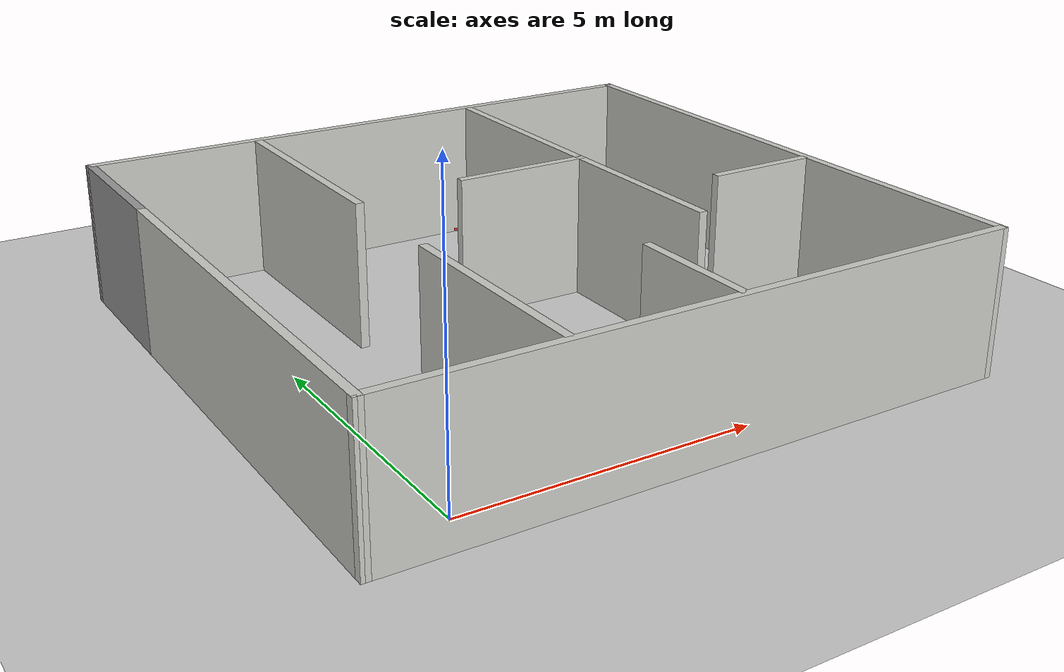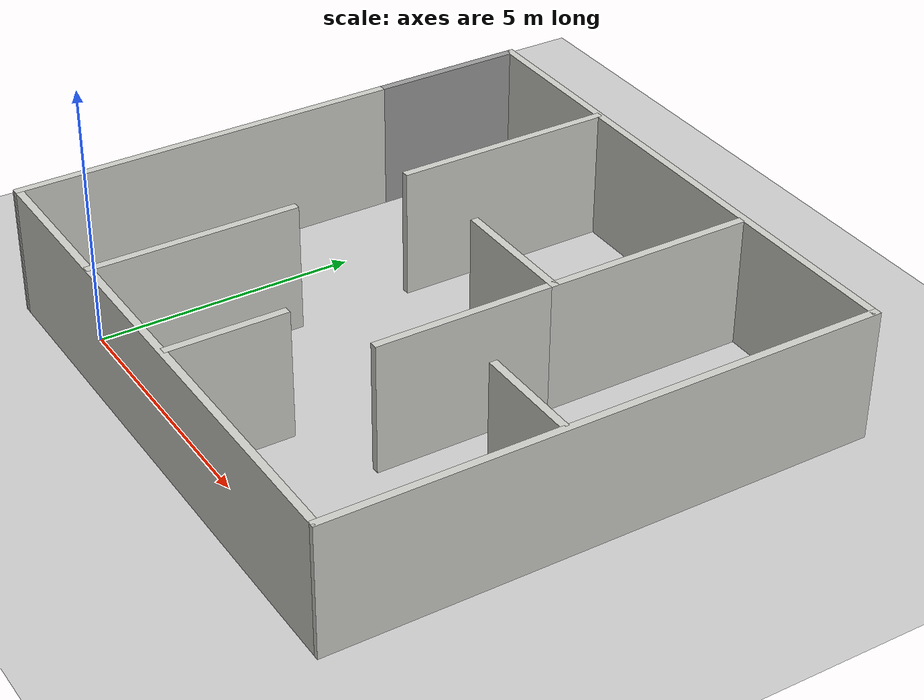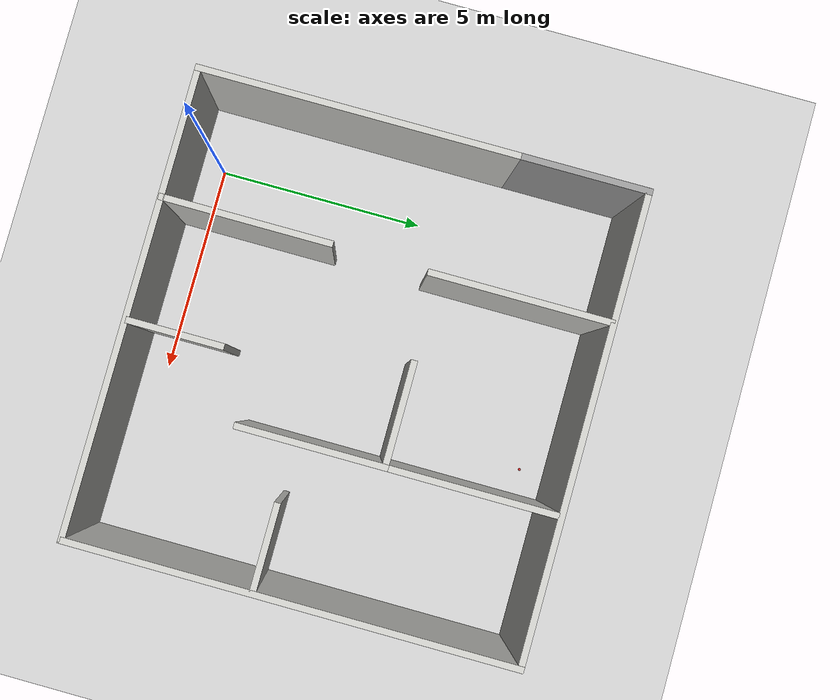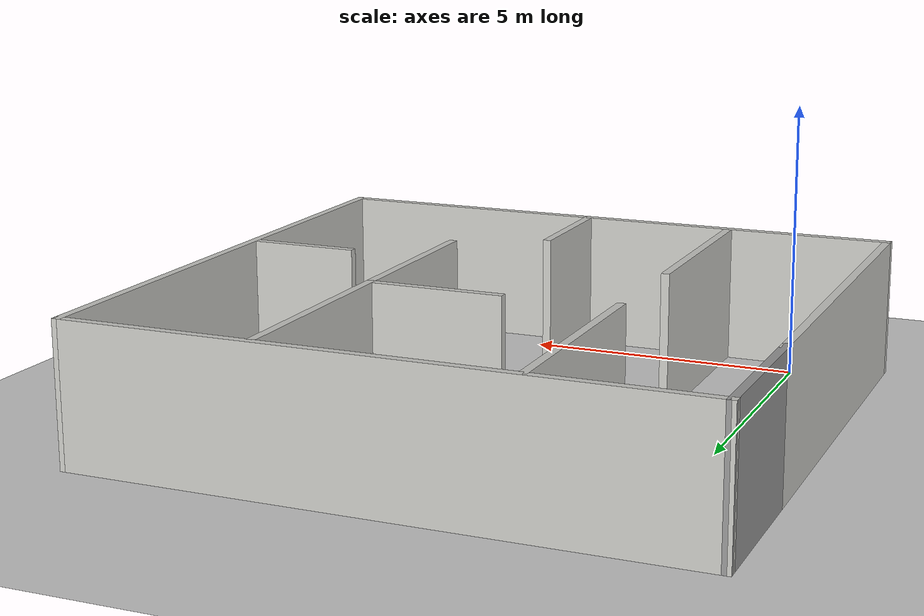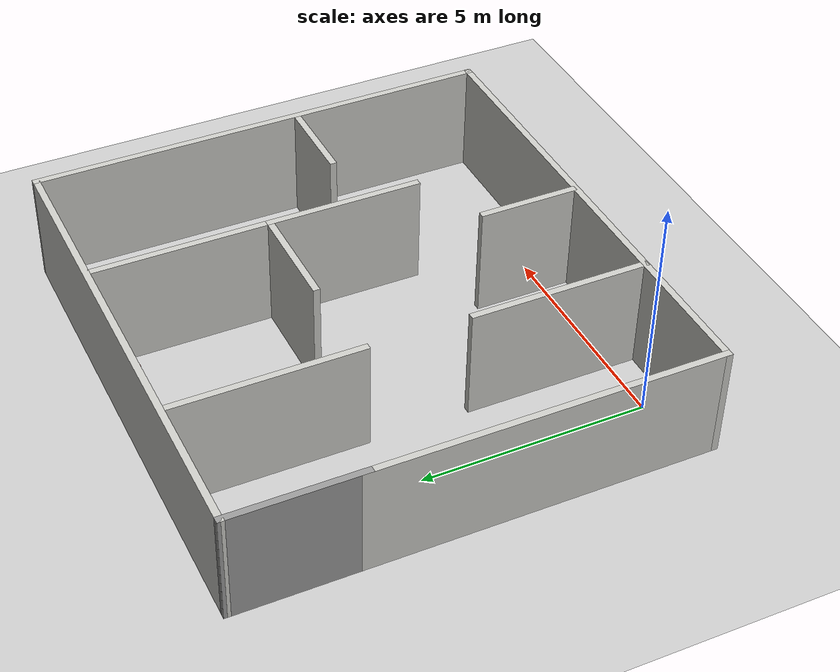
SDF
<sdf version="1.6">
 <world name="default">
  <light name="sun" type="directional">
   <pose>0 0 10 0 -0 0</pose>
   <diffuse>0.8 0.8 0.8 1</diffuse>
   <specular>0.2 0.2 0.2 1</specular>
   <attenuation>
    <range>1000</range>
    <constant>0.9</constant>
    <linear>0.01</linear>
    <quadratic>0.001</quadratic>
   </attenuation>
   <direction>-0.5 0.1 -0.9</direction>
  </light>
  <model name="ground_plane">
   <static>1</static>
   <link name="link">
    <collision name="collision">
     <geometry><plane><normal>0 0 1</normal><size>100 100</size></plane></geometry>
     <surface><friction><ode><mu>100</mu><mu2>50</mu2></ode></friction></surface>
    </collision>
    <visual name="visual">
     <cast_shadows>0</cast_shadows>
     <geometry><plane><normal>0 0 1</normal><size>100 100</size></plane></geometry>
     <material>
      <script><uri>file://media/materials/scripts/gazebo.material</uri><name>Gazebo/Grey</name></script>
     </material>
    </visual>
   </link>
  </model>
  <gravity>0 0 -9.8</gravity>
  <magnetic_field>6e-06 2.3e-05 -4.2e-05</magnetic_field>
  <atmosphere type="adiabatic"/>
  <physics name="default_physics" default="0" type="ode">
   <max_step_size>0.001</max_step_size>
   <real_time_factor>1</real_time_factor>
   <real_time_update_rate>1000</real_time_update_rate>
  </physics>
  <scene><ambient>0.4 0.4 0.4 1</ambient><background>0.7 0.7 0.7 1</background><shadows>1</shadows></scene>
  <audio><device>default</device></audio>
  <spherical_coordinates>
   <surface_model>EARTH_WGS84</surface_model>
   <latitude_deg>0</latitude_deg>
   <longitude_deg>0</longitude_deg>
   <elevation>0</elevation>
   <heading_deg>0</heading_deg>
  </spherical_coordinates>
  <model name="maze_map">
   <pose>3.83377 4.51616 0 0 -0 0</pose>
   <link name="Wall_73">
    <collision name="Wall_73_Collision">
     <geometry><box><size>7.75 0.15 2.5</size></box></geometry>
     <pose>0 0 1.25 0 -0 0</pose>
    </collision>
    <visual name="Wall_73_Visual">
     <pose>0 0 1.25 0 -0 0</pose>
     <geometry><box><size>7.75 0.15 2.5</size></box></geometry>
     <material>
      <script><uri>file://media/materials/scripts/gazebo.material</uri><name>Gazebo/CeilingTiled</name></script>
      <ambient>1 1 1 1</ambient>
     </material>
     <meta><layer>0</layer></meta>
    </visual>
    <pose>-5.39936 -1.37511 0 0 -0 1.5708</pose>
   </link>
   <link name="Wall_75">
    <collision name="Wall_75_Collision">
     <geometry><box><size>10.9263 0.15 2.5</size></box></geometry>
     <pose>0 0 1.25 0 -0 0</pose>
    </collision>
    <visual name="Wall_75_Visual">
     <pose>0 0 1.25 0 -0 0</pose>
     <geometry><box><size>10.9263 0.15 2.5</size></box></geometry>
     <material>
      <script><uri>file://media/materials/scripts/gazebo.material</uri><name>Gazebo/CeilingTiled</name></script>
      <ambient>1 1 1 1</ambient>
     </material>
     <meta><layer>0</layer></meta>
    </visual>
    <pose>-0.011229 -5.17416 0 0 -0 0.000176</pose>
   </link>
   <link name="Wall_76">
    <collision name="Wall_76_Collision">
     <geometry><box><size>10.4655 0.15 2.5</size></box></geometry>
     <pose>0 0 1.25 0 -0 0</pose>
    </collision>
    <visual name="Wall_76_Visual">
     <pose>0 0 1.25 0 -0 0</pose>
     <geometry><box><size>10.4655 0.15 2.5</size></box></geometry>
     <material>
      <script><uri>file://media/materials/scripts/gazebo.material</uri><name>Gazebo/CeilingTiled</name></script>
      <ambient>1 1 1 1</ambient>
     </material>
     <meta><layer>0</layer></meta>
    </visual>
    <pose>5.39959 -0.015463 0 0 -0 1.5708</pose>
   </link>
   <link name="Wall_78">
    <collision name="Wall_78_Collision">
     <geometry><box><size>10.9263 0.15 2.5</size></box></geometry>
     <pose>0 0 1.25 0 -0 0</pose>
    </collision>
    <visual name="Wall_78_Visual">
     <pose>0 0 1.25 0 -0 0</pose>
     <geometry><box><size>10.9263 0.15 2.5</size></box></geometry>
     <material>
      <script><uri>file://media/materials/scripts/gazebo.material</uri><name>Gazebo/CeilingTiled</name></script>
      <ambient>1 1 1 1</ambient>
     </material>
     <meta><layer>0</layer></meta>
    </visual>
    <pose>-0.011229 5.15859 0 0 -0 3.13857</pose>
   </link>
   <link name="Wall_79">
    <collision name="Wall_79_Collision">
     <geometry><box><size>3 0.15 2.5</size></box></geometry>
     <pose>0 0 1.25 0 -0 0</pose>
    </collision>
    <visual name="Wall_79_Visual">
     <pose>0 0 1.25 0 -0 0</pose>
     <geometry><box><size>3 0.15 2.5</size></box></geometry>
     <material>
      <script><uri>file://media/materials/scripts/gazebo.material</uri><name>Gazebo/Grey</name></script>
      <ambient>1 1 1 1</ambient>
     </material>
     <meta><layer>0</layer></meta>
    </visual>
    <pose>-5.39936 3.74989 0 0 -0 -1.5708</pose>
   </link>
   <link name="Wall_81">
    <collision name="Wall_81_Collision">
     <geometry><box><size>4 0.15 2.5</size></box></geometry>
     <pose>0 0 1.25 0 -0 0</pose>
    </collision>
    <visual name="Wall_81_Visual">
     <pose>0 0 1.25 0 -0 0</pose>
     <geometry><box><size>4 0.15 2.5</size></box></geometry>
     <material>
      <script><uri>file://media/materials/scripts/gazebo.material</uri><name>Gazebo/CeilingTiled</name></script>
      <ambient>1 1 1 1</ambient>
     </material>
     <meta><layer>0</layer></meta>
    </visual>
    <pose>-2.40145 -3.23008 0 0 -0 1.5708</pose>
   </link>
   <link name="Wall_84">
    <collision name="Wall_84_Collision">
     <geometry><box><size>4.25 0.15 2.5</size></box></geometry>
     <pose>0 0 1.25 0 -0 0</pose>
    </collision>
    <visual name="Wall_84_Visual">
     <pose>0 0 1.25 0 -0 0</pose>
     <geometry><box><size>4.25 0.15 2.5</size></box></geometry>
     <material>
      <script><uri>file://media/materials/scripts/gazebo.material</uri><name>Gazebo/CeilingTiled</name></script>
      <ambient>1 1 1 1</ambient>
     </material>
     <meta><layer>0</layer></meta>
    </visual>
    <pose>-2.36994 3.05976 0 0 -0 -1.5708</pose>
   </link>
   <link name="Wall_86">
    <collision name="Wall_86_Collision">
     <geometry><box><size>2.5 0.15 2.5</size></box></geometry>
     <pose>0 0 1.25 0 -0 0</pose>
    </collision>
    <visual name="Wall_86_Visual">
     <pose>0 0 1.25 0 -0 0</pose>
     <geometry><box><size>2.5 0.15 2.5</size></box></geometry>
     <material>
      <script><uri>file://media/materials/scripts/gazebo.material</uri><name>Gazebo/CeilingTiled</name></script>
      <ambient>1 1 1 1</ambient>
     </material>
     <meta><layer>0</layer></meta>
    </visual>
    <pose>0.830543 1.17305 0 0 -0 0</pose>
   </link>
   <link name="Wall_87">
    <collision name="Wall_87_Collision">
     <geometry><box><size>4 0.15 2.5</size></box></geometry>
     <pose>0 0 1.25 0 -0 0</pose>
    </collision>
    <visual name="Wall_87_Visual">
     <pose>0 0 1.25 0 -0 0</pose>
     <geometry><box><size>4 0.15 2.5</size></box></geometry>
     <material>
      <script><uri>file://media/materials/scripts/gazebo.material</uri><name>Gazebo/CeilingTiled</name></script>
      <ambient>1 1 1 1</ambient>
     </material>
     <meta><layer>0</layer></meta>
    </visual>
    <pose>2.00554 3.09806 0 0 -0 1.5708</pose>
   </link>
   <link name="Wall_93">
    <collision name="Wall_93_Collision">
     <geometry><box><size>3.5 0.15 2.5</size></box></geometry>
     <pose>0 0 1.25 0 -0 0</pose>
    </collision>
    <visual name="Wall_93_Visual">
     <pose>0 0 1.25 0 -0 0</pose>
     <geometry><box><size>3.5 0.15 2.5</size></box></geometry>
     <material>
      <script><uri>file://media/materials/scripts/gazebo.material</uri><name>Gazebo/CeilingTiled</name></script>
      <ambient>1 1 1 1</ambient>
     </material>
     <meta><layer>0</layer></meta>
    </visual>
    <pose>2.00554 -0.501945 0 0 -0 -1.5708</pose>
   </link>
   <link name="Wall_95">
    <collision name="Wall_95_Collision">
     <geometry><box><size>2.25 0.15 2.5</size></box></geometry>
     <pose>0 0 1.25 0 -0 0</pose>
    </collision>
    <visual name="Wall_95_Visual">
     <pose>0 0 1.25 0 -0 0</pose>
     <geometry><box><size>2.25 0.15 2.5</size></box></geometry>
     <material>
      <script><uri>file://media/materials/scripts/gazebo.material</uri><name>Gazebo/CeilingTiled</name></script>
      <ambient>1 1 1 1</ambient>
     </material>
     <meta><layer>0</layer></meta>
    </visual>
    <pose>0.416032 -4.03963 0 0 -0 1.5708</pose>
   </link>
   <link name="Wall_97">
    <collision name="Wall_97_Collision">
     <geometry><box><size>2 0.15 2.5</size></box></geometry>
     <pose>0 0 1.25 0 -0 0</pose>
    </collision>
    <visual name="Wall_97_Visual">
     <pose>0 0 1.25 0 -0 0</pose>
     <geometry><box><size>2 0.15 2.5</size></box></geometry>
     <material>
      <script><uri>file://media/materials/scripts/gazebo.material</uri><name>Gazebo/CeilingTiled</name></script>
      <ambient>1 1 1 1</ambient>
     </material>
     <meta><layer>0</layer></meta>
    </visual>
    <pose>4.36129 -0.870691 0 0 -0 3.14159</pose>
   </link>
   <static>1</static>
  </model>
  <model name="RoboCup SPL Ball">
   <static>0</static>
   <link name="ball">
    <inertial>
     <mass>0.0056</mass>
     <inertia>
      <ixx>2.37e-06</ixx>
      <iyy>2.37e-06</iyy>
      <izz>2.37e-06</izz>
      <ixy>0</ixy>
      <ixz>0</ixz>
      <iyz>0</iyz>
     </inertia>
    </inertial>
    <collision name="collision"><geometry><sphere><radius>0.0325</radius></sphere></geometry></collision>
    <visual name="visual">
     <geometry><sphere><radius>0.0325</radius></sphere></geometry>
     <material>
      <script><uri>file://media/materials/scripts/gazebo.material</uri><name>Gazebo/RedBright</name></script>
     </material>
    </visual>
   </link>
   <pose>5.15164 8.95935 0.289568 0 -0 0</pose>
  </model>
 </world>
</sdf>
